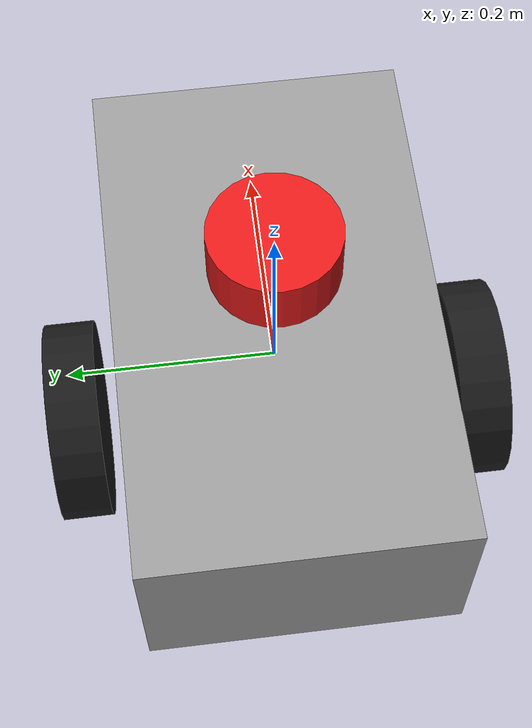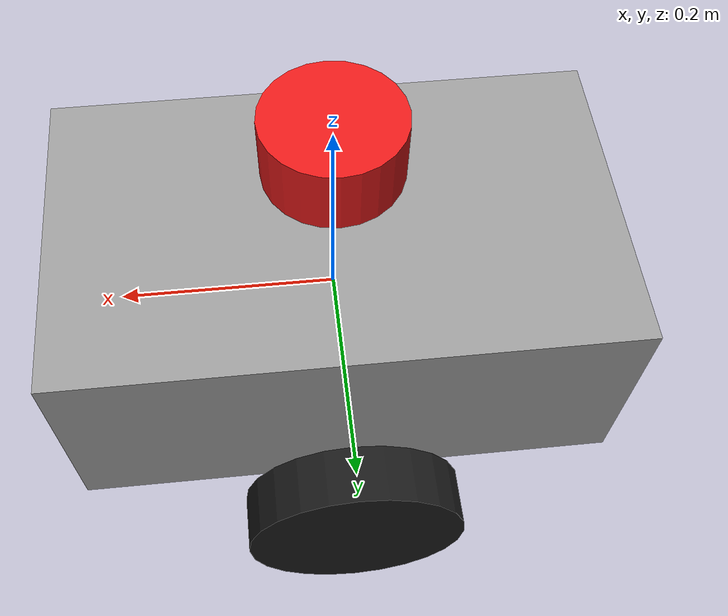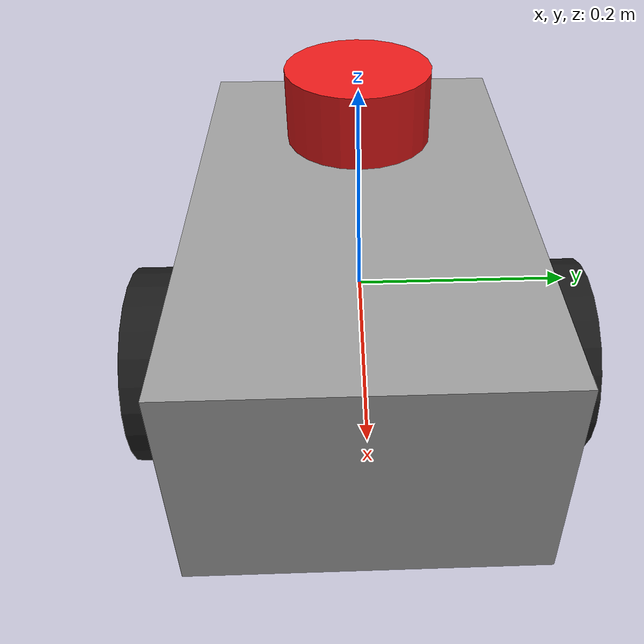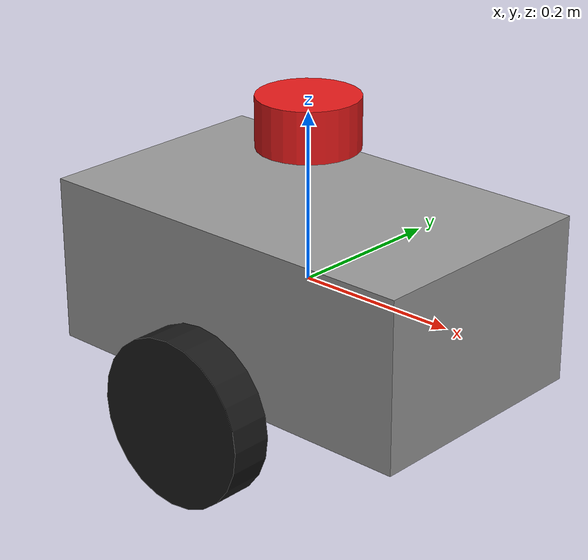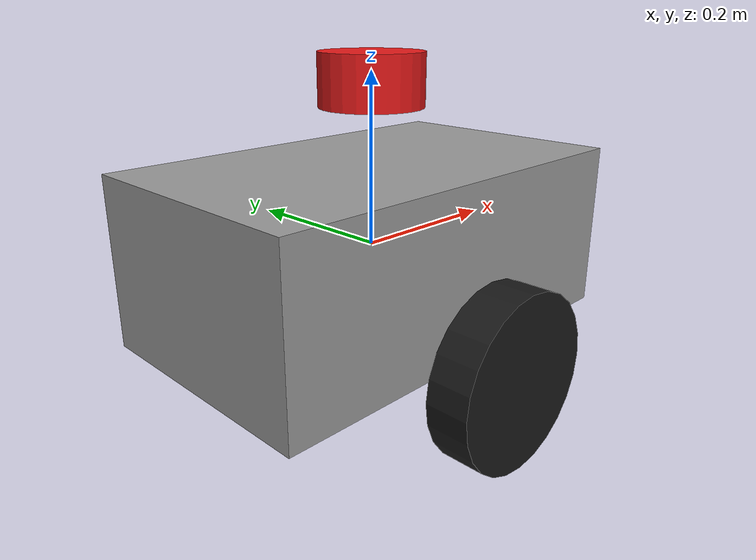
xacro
<?xml version="1.0"?>
<robot name="cuboid_robot" xmlns:xacro="http://www.ros.org/wiki/xacro">

  <material name="gray">
    <color rgba="0.6 0.6 0.6 1.0"/>
  </material>

  <material name="black">
    <color rgba="0.1 0.1 0.1 1.0"/>
  </material>

  <material name="red">
    <color rgba="0.9 0.1 0.1 1.0"/>
  </material>

  <link name="base_link">
    <visual>
      <origin xyz="0 0 0"/>
      <geometry>
        <box size="0.5 0.3 0.2"/>
      </geometry>
      <material name="gray"/>
    </visual>
    <collision>
      <origin xyz="0 0 0"/>
      <geometry>
        <box size="0.5 0.3 0.2"/>
      </geometry>
    </collision>
    <inertial>
      <mass value="5.0"/>
      <inertia ixx="0.1" iyy="0.1" izz="0.1"
               ixy="0.0" ixz="0.0" iyz="0.0"/>
    </inertial>
  </link>

  <link name="left_wheel">
    <visual>
      <origin rpy="1.5708 0 0"/>
      <geometry>
        <cylinder radius="0.1" length="0.05"/>
      </geometry>
      <material name="black"/>
    </visual>
    <collision>
      <origin rpy="1.5708 0 0"/>
      <geometry>
        <cylinder radius="0.1" length="0.05"/>
      </geometry>
    </collision>
    <inertial>
      <mass value="0.5"/>
      <inertia ixx="0.002" iyy="0.001" izz="0.002"
               ixy="0.0" ixz="0.0" iyz="0.0"/>
    </inertial>
  </link>

  <link name="right_wheel">
    <visual>
      <origin rpy="1.5708 0 0"/>
      <geometry>
        <cylinder radius="0.1" length="0.05"/>
      </geometry>
      <material name="black"/>
    </visual>
    <collision>
      <origin rpy="1.5708 0 0"/>
      <geometry>
        <cylinder radius="0.1" length="0.05"/>
      </geometry>
    </collision>
    <inertial>
      <mass value="0.5"/>
      <inertia ixx="0.002" iyy="0.001" izz="0.002"
               ixy="0.0" ixz="0.0" iyz="0.0"/>
    </inertial>
  </link>

  <joint name="left_wheel_joint" type="fixed">
    <parent link="base_link"/>
    <child link="left_wheel"/>
    <origin xyz="0 0.2 -0.1"/>
  </joint>

  <joint name="right_wheel_joint" type="fixed">
    <parent link="base_link"/>
    <child link="right_wheel"/>
    <origin xyz="0 -0.2 -0.1"/>
  </joint>

  <link name="lidar_link">
    <visual>
      <origin xyz="0 0 0.03"/>
      <geometry>
        <cylinder radius="0.06" length="0.06"/>
      </geometry>
      <material name="red"/>
    </visual>
    <collision>
      <origin xyz="0 0 0.03"/>
      <geometry>
        <cylinder radius="0.06" length="0.06"/>
      </geometry>
    </collision>
    <inertial>
      <mass value="0.1"/>
      <inertia ixx="0.0002" iyy="0.0002" izz="0.0002"
               ixy="0.0" ixz="0.0" iyz="0.0"/>
    </inertial>
  </link>

  <joint name="lidar_joint" type="fixed">
    <parent link="base_link"/>
    <child link="lidar_link"/>
    <origin xyz="0 0 0.16"/>
  </joint>

  <gazebo reference="lidar_link">
    <sensor name="lidar" type="ray">
      <pose>0 0 0 0 0 0</pose>
      <frame_id>lidar_link</frame_id>
      <always_on>1</always_on>
      <visualize>true</visualize>
      <update_rate>10</update_rate>
      <topic>/scan</topic>
      <ray>
        <scan>
          <horizontal>
            <samples>360</samples>
            <resolution>1</resolution>
            <min_angle>-3.14159</min_angle>
            <max_angle>3.14159</max_angle>
          </horizontal>
        </scan>
        <range>
          <min>0.12</min>
          <max>12.0</max>
          <resolution>0.01</resolution>
        </range>
      </ray>
    </sensor>
  </gazebo>

  <gazebo>
    <plugin filename="gz-sim-diff-drive-system"
            name="gz::sim::systems::DiffDrive">
      <left_joint>left_wheel_joint</left_joint>
      <right_joint>right_wheel_joint</right_joint>
      <wheel_separation>0.4</wheel_separation>
      <wheel_radius>0.1</wheel_radius>
      <min_velocity>-1.5</min_velocity>
      <max_velocity>1.5</max_velocity>
      <min_acceleration>-2.0</min_acceleration>
      <max_acceleration>2.0</max_acceleration>
      <topic>/cmd_vel</topic>
      <odom_topic>/odom</odom_topic>
      <odom_publish_frequency>30</odom_publish_frequency>
      <frame_id>odom</frame_id>
      <child_frame_id>base_link</child_frame_id>
    </plugin>
  </gazebo>

</robot>
